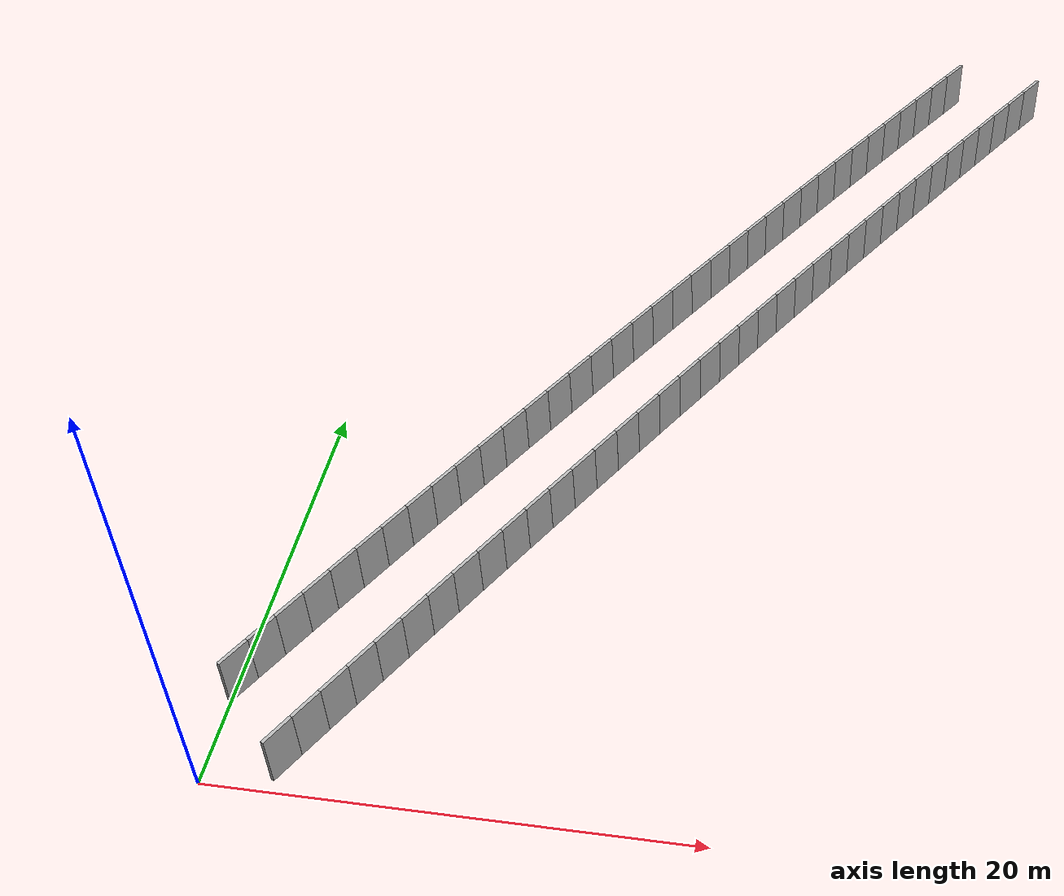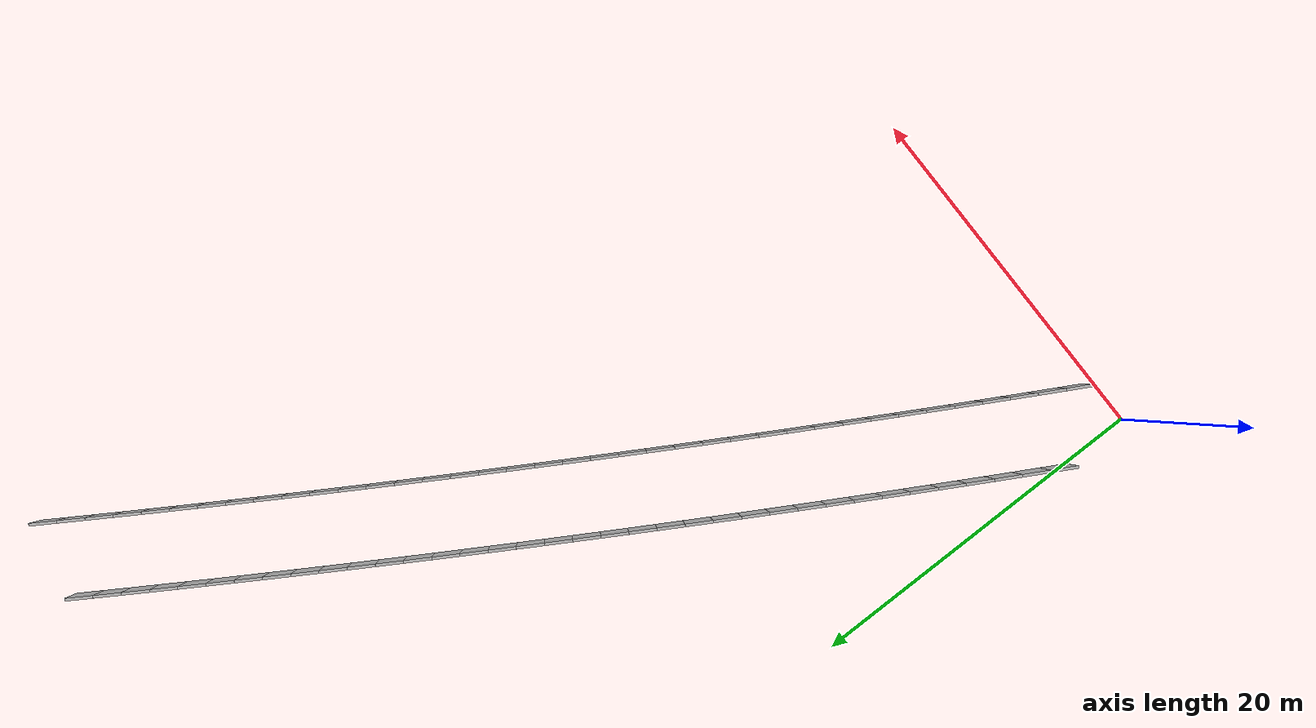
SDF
<?xml version="1.0" ?>
<sdf version="1.6">
  <model name="sps_0535">
    <pose frame="">0 0 0 0 -0 0</pose>
    <static>1</static>
    <self_collide>0</self_collide>
    <allow_auto_disable>0</allow_auto_disable>
    <link name="Wall4851">
      <kinematic>0</kinematic>
      <gravity>1</gravity>
      <self_collide>0</self_collide>
      <collision name="collision">
        <geometry>
          <box>
            <size>1.49664 0.15 2.5</size>
          </box>
        </geometry>
        <pose frame="">0 0 0 0 -0 0</pose>
      </collision>
      <visual name="visual">
        <geometry>
          <box>
            <size>1.49664 0.15 2.5</size>
          </box>
        </geometry>
        <pose frame="">0 0 0 0 -0 0</pose>
        <cast_shadows>1</cast_shadows>
        <transparency>0.0</transparency>
      </visual>
      <pose frame="">31.4339 48.8159 1.25 0 0 -2.13633</pose>
    </link>
    <link name="Wall4852">
      <kinematic>0</kinematic>
      <gravity>1</gravity>
      <self_collide>0</self_collide>
      <collision name="collision">
        <geometry>
          <box>
            <size>1.49649 0.15 2.5</size>
          </box>
        </geometry>
        <pose frame="">0 0 0 0 -0 0</pose>
      </collision>
      <visual name="visual">
        <geometry>
          <box>
            <size>1.49649 0.15 2.5</size>
          </box>
        </geometry>
        <pose frame="">0 0 0 0 -0 0</pose>
        <cast_shadows>1</cast_shadows>
        <transparency>0.0</transparency>
      </visual>
      <pose frame="">30.633 47.5517 1.25 0 0 -2.13466</pose>
    </link>
    <link name="Wall4853">
      <kinematic>0</kinematic>
      <gravity>1</gravity>
      <self_collide>0</self_collide>
      <collision name="collision">
        <geometry>
          <box>
            <size>1.49655 0.15 2.5</size>
          </box>
        </geometry>
        <pose frame="">0 0 0 0 -0 0</pose>
      </collision>
      <visual name="visual">
        <geometry>
          <box>
            <size>1.49655 0.15 2.5</size>
          </box>
        </geometry>
        <pose frame="">0 0 0 0 -0 0</pose>
        <cast_shadows>1</cast_shadows>
        <transparency>0.0</transparency>
      </visual>
      <pose frame="">29.8342 46.2862 1.25 0 0 -2.13304</pose>
    </link>
    <link name="Wall4854">
      <kinematic>0</kinematic>
      <gravity>1</gravity>
      <self_collide>0</self_collide>
      <collision name="collision">
        <geometry>
          <box>
            <size>1.49655 0.15 2.5</size>
          </box>
        </geometry>
        <pose frame="">0 0 0 0 -0 0</pose>
      </collision>
      <visual name="visual">
        <geometry>
          <box>
            <size>1.49655 0.15 2.5</size>
          </box>
        </geometry>
        <pose frame="">0 0 0 0 -0 0</pose>
        <cast_shadows>1</cast_shadows>
        <transparency>0.0</transparency>
      </visual>
      <pose frame="">29.0373 45.0194 1.25 0 0 -2.1315</pose>
    </link>
    <link name="Wall4855">
      <kinematic>0</kinematic>
      <gravity>1</gravity>
      <self_collide>0</self_collide>
      <collision name="collision">
        <geometry>
          <box>
            <size>1.49648 0.15 2.5</size>
          </box>
        </geometry>
        <pose frame="">0 0 0 0 -0 0</pose>
      </collision>
      <visual name="visual">
        <geometry>
          <box>
            <size>1.49648 0.15 2.5</size>
          </box>
        </geometry>
        <pose frame="">0 0 0 0 -0 0</pose>
        <cast_shadows>1</cast_shadows>
        <transparency>0.0</transparency>
      </visual>
      <pose frame="">28.2425 43.7514 1.25 0 0 -2.12989</pose>
    </link>
    <link name="Wall4856">
      <kinematic>0</kinematic>
      <gravity>1</gravity>
      <self_collide>0</self_collide>
      <collision name="collision">
        <geometry>
          <box>
            <size>1.49633 0.15 2.5</size>
          </box>
        </geometry>
        <pose frame="">0 0 0 0 -0 0</pose>
      </collision>
      <visual name="visual">
        <geometry>
          <box>
            <size>1.49633 0.15 2.5</size>
          </box>
        </geometry>
        <pose frame="">0 0 0 0 -0 0</pose>
        <cast_shadows>1</cast_shadows>
        <transparency>0.0</transparency>
      </visual>
      <pose frame="">27.4499 42.4822 1.25 0 0 -2.12827</pose>
    </link>
    <link name="Wall4857">
      <kinematic>0</kinematic>
      <gravity>1</gravity>
      <self_collide>0</self_collide>
      <collision name="collision">
        <geometry>
          <box>
            <size>1.49661 0.15 2.5</size>
          </box>
        </geometry>
        <pose frame="">0 0 0 0 -0 0</pose>
      </collision>
      <visual name="visual">
        <geometry>
          <box>
            <size>1.49661 0.15 2.5</size>
          </box>
        </geometry>
        <pose frame="">0 0 0 0 -0 0</pose>
        <cast_shadows>1</cast_shadows>
        <transparency>0.0</transparency>
      </visual>
      <pose frame="">26.6591 41.2117 1.25 0 0 -2.12672</pose>
    </link>
    <link name="Wall4858">
      <kinematic>0</kinematic>
      <gravity>1</gravity>
      <self_collide>0</self_collide>
      <collision name="collision">
        <geometry>
          <box>
            <size>1.49663 0.15 2.5</size>
          </box>
        </geometry>
        <pose frame="">0 0 0 0 -0 0</pose>
      </collision>
      <visual name="visual">
        <geometry>
          <box>
            <size>1.49663 0.15 2.5</size>
          </box>
        </geometry>
        <pose frame="">0 0 0 0 -0 0</pose>
        <cast_shadows>1</cast_shadows>
        <transparency>0.0</transparency>
      </visual>
      <pose frame="">25.8703 39.9399 1.25 0 0 -2.12527</pose>
    </link>
    <link name="Wall4859">
      <kinematic>0</kinematic>
      <gravity>1</gravity>
      <self_collide>0</self_collide>
      <collision name="collision">
        <geometry>
          <box>
            <size>1.49649 0.15 2.5</size>
          </box>
        </geometry>
        <pose frame="">0 0 0 0 -0 0</pose>
      </collision>
      <visual name="visual">
        <geometry>
          <box>
            <size>1.49649 0.15 2.5</size>
          </box>
        </geometry>
        <pose frame="">0 0 0 0 -0 0</pose>
        <cast_shadows>1</cast_shadows>
        <transparency>0.0</transparency>
      </visual>
      <pose frame="">25.0834 38.6669 1.25 0 0 -2.12365</pose>
    </link>
    <link name="Wall4860">
      <kinematic>0</kinematic>
      <gravity>1</gravity>
      <self_collide>0</self_collide>
      <collision name="collision">
        <geometry>
          <box>
            <size>1.49668 0.15 2.5</size>
          </box>
        </geometry>
        <pose frame="">0 0 0 0 -0 0</pose>
      </collision>
      <visual name="visual">
        <geometry>
          <box>
            <size>1.49668 0.15 2.5</size>
          </box>
        </geometry>
        <pose frame="">0 0 0 0 -0 0</pose>
        <cast_shadows>1</cast_shadows>
        <transparency>0.0</transparency>
      </visual>
      <pose frame="">24.2985 37.3926 1.25 0 0 -2.12199</pose>
    </link>
    <link name="Wall4861">
      <kinematic>0</kinematic>
      <gravity>1</gravity>
      <self_collide>0</self_collide>
      <collision name="collision">
        <geometry>
          <box>
            <size>1.49649 0.15 2.5</size>
          </box>
        </geometry>
        <pose frame="">0 0 0 0 -0 0</pose>
      </collision>
      <visual name="visual">
        <geometry>
          <box>
            <size>1.49649 0.15 2.5</size>
          </box>
        </geometry>
        <pose frame="">0 0 0 0 -0 0</pose>
        <cast_shadows>1</cast_shadows>
        <transparency>0.0</transparency>
      </visual>
      <pose frame="">23.5159 36.117 1.25 0 0 -2.1203</pose>
    </link>
    <link name="Wall4862">
      <kinematic>0</kinematic>
      <gravity>1</gravity>
      <self_collide>0</self_collide>
      <collision name="collision">
        <geometry>
          <box>
            <size>1.49635 0.15 2.5</size>
          </box>
        </geometry>
        <pose frame="">0 0 0 0 -0 0</pose>
      </collision>
      <visual name="visual">
        <geometry>
          <box>
            <size>1.49635 0.15 2.5</size>
          </box>
        </geometry>
        <pose frame="">0 0 0 0 -0 0</pose>
        <cast_shadows>1</cast_shadows>
        <transparency>0.0</transparency>
      </visual>
      <pose frame="">22.7353 34.8403 1.25 0 0 -2.11882</pose>
    </link>
    <link name="Wall4863">
      <kinematic>0</kinematic>
      <gravity>1</gravity>
      <self_collide>0</self_collide>
      <collision name="collision">
        <geometry>
          <box>
            <size>1.49669 0.15 2.5</size>
          </box>
        </geometry>
        <pose frame="">0 0 0 0 -0 0</pose>
      </collision>
      <visual name="visual">
        <geometry>
          <box>
            <size>1.49669 0.15 2.5</size>
          </box>
        </geometry>
        <pose frame="">0 0 0 0 -0 0</pose>
        <cast_shadows>1</cast_shadows>
        <transparency>0.0</transparency>
      </visual>
      <pose frame="">21.9567 33.5623 1.25 0 0 -2.11715</pose>
    </link>
    <link name="Wall4864">
      <kinematic>0</kinematic>
      <gravity>1</gravity>
      <self_collide>0</self_collide>
      <collision name="collision">
        <geometry>
          <box>
            <size>1.49645 0.15 2.5</size>
          </box>
        </geometry>
        <pose frame="">0 0 0 0 -0 0</pose>
      </collision>
      <visual name="visual">
        <geometry>
          <box>
            <size>1.49645 0.15 2.5</size>
          </box>
        </geometry>
        <pose frame="">0 0 0 0 -0 0</pose>
        <cast_shadows>1</cast_shadows>
        <transparency>0.0</transparency>
      </visual>
      <pose frame="">21.18 32.283 1.25 0 0 -2.11563</pose>
    </link>
    <link name="Wall4865">
      <kinematic>0</kinematic>
      <gravity>1</gravity>
      <self_collide>0</self_collide>
      <collision name="collision">
        <geometry>
          <box>
            <size>1.49648 0.15 2.5</size>
          </box>
        </geometry>
        <pose frame="">0 0 0 0 -0 0</pose>
      </collision>
      <visual name="visual">
        <geometry>
          <box>
            <size>1.49648 0.15 2.5</size>
          </box>
        </geometry>
        <pose frame="">0 0 0 0 -0 0</pose>
        <cast_shadows>1</cast_shadows>
        <transparency>0.0</transparency>
      </visual>
      <pose frame="">20.4054 31.0026 1.25 0 0 -2.11409</pose>
    </link>
    <link name="Wall4866">
      <kinematic>0</kinematic>
      <gravity>1</gravity>
      <self_collide>0</self_collide>
      <collision name="collision">
        <geometry>
          <box>
            <size>1.49665 0.15 2.5</size>
          </box>
        </geometry>
        <pose frame="">0 0 0 0 -0 0</pose>
      </collision>
      <visual name="visual">
        <geometry>
          <box>
            <size>1.49665 0.15 2.5</size>
          </box>
        </geometry>
        <pose frame="">0 0 0 0 -0 0</pose>
        <cast_shadows>1</cast_shadows>
        <transparency>0.0</transparency>
      </visual>
      <pose frame="">19.6328 29.7209 1.25 0 0 -2.11245</pose>
    </link>
    <link name="Wall4867">
      <kinematic>0</kinematic>
      <gravity>1</gravity>
      <self_collide>0</self_collide>
      <collision name="collision">
        <geometry>
          <box>
            <size>1.49645 0.15 2.5</size>
          </box>
        </geometry>
        <pose frame="">0 0 0 0 -0 0</pose>
      </collision>
      <visual name="visual">
        <geometry>
          <box>
            <size>1.49645 0.15 2.5</size>
          </box>
        </geometry>
        <pose frame="">0 0 0 0 -0 0</pose>
        <cast_shadows>1</cast_shadows>
        <transparency>0.0</transparency>
      </visual>
      <pose frame="">18.8622 28.438 1.25 0 0 -2.11096</pose>
    </link>
    <link name="Wall4868">
      <kinematic>0</kinematic>
      <gravity>1</gravity>
      <self_collide>0</self_collide>
      <collision name="collision">
        <geometry>
          <box>
            <size>1.49652 0.15 2.5</size>
          </box>
        </geometry>
        <pose frame="">0 0 0 0 -0 0</pose>
      </collision>
      <visual name="visual">
        <geometry>
          <box>
            <size>1.49652 0.15 2.5</size>
          </box>
        </geometry>
        <pose frame="">0 0 0 0 -0 0</pose>
        <cast_shadows>1</cast_shadows>
        <transparency>0.0</transparency>
      </visual>
      <pose frame="">18.0937 27.1539 1.25 0 0 -2.10922</pose>
    </link>
    <link name="Wall4869">
      <kinematic>0</kinematic>
      <gravity>1</gravity>
      <self_collide>0</self_collide>
      <collision name="collision">
        <geometry>
          <box>
            <size>1.49633 0.15 2.5</size>
          </box>
        </geometry>
        <pose frame="">0 0 0 0 -0 0</pose>
      </collision>
      <visual name="visual">
        <geometry>
          <box>
            <size>1.49633 0.15 2.5</size>
          </box>
        </geometry>
        <pose frame="">0 0 0 0 -0 0</pose>
        <cast_shadows>1</cast_shadows>
        <transparency>0.0</transparency>
      </visual>
      <pose frame="">17.3274 25.8686 1.25 0 0 -2.10773</pose>
    </link>
    <link name="Wall4870">
      <kinematic>0</kinematic>
      <gravity>1</gravity>
      <self_collide>0</self_collide>
      <collision name="collision">
        <geometry>
          <box>
            <size>1.49669 0.15 2.5</size>
          </box>
        </geometry>
        <pose frame="">0 0 0 0 -0 0</pose>
      </collision>
      <visual name="visual">
        <geometry>
          <box>
            <size>1.49669 0.15 2.5</size>
          </box>
        </geometry>
        <pose frame="">0 0 0 0 -0 0</pose>
        <cast_shadows>1</cast_shadows>
        <transparency>0.0</transparency>
      </visual>
      <pose frame="">16.5629 24.5821 1.25 0 0 -2.10622</pose>
    </link>
    <link name="Wall4871">
      <kinematic>0</kinematic>
      <gravity>1</gravity>
      <self_collide>0</self_collide>
      <collision name="collision">
        <geometry>
          <box>
            <size>1.49656 0.15 2.5</size>
          </box>
        </geometry>
        <pose frame="">0 0 0 0 -0 0</pose>
      </collision>
      <visual name="visual">
        <geometry>
          <box>
            <size>1.49656 0.15 2.5</size>
          </box>
        </geometry>
        <pose frame="">0 0 0 0 -0 0</pose>
        <cast_shadows>1</cast_shadows>
        <transparency>0.0</transparency>
      </visual>
      <pose frame="">15.8003 23.2943 1.25 0 0 -2.10456</pose>
    </link>
    <link name="Wall4872">
      <kinematic>0</kinematic>
      <gravity>1</gravity>
      <self_collide>0</self_collide>
      <collision name="collision">
        <geometry>
          <box>
            <size>1.49643 0.15 2.5</size>
          </box>
        </geometry>
        <pose frame="">0 0 0 0 -0 0</pose>
      </collision>
      <visual name="visual">
        <geometry>
          <box>
            <size>1.49643 0.15 2.5</size>
          </box>
        </geometry>
        <pose frame="">0 0 0 0 -0 0</pose>
        <cast_shadows>1</cast_shadows>
        <transparency>0.0</transparency>
      </visual>
      <pose frame="">15.0399 22.0054 1.25 0 0 -2.10305</pose>
    </link>
    <link name="Wall4873">
      <kinematic>0</kinematic>
      <gravity>1</gravity>
      <self_collide>0</self_collide>
      <collision name="collision">
        <geometry>
          <box>
            <size>1.49648 0.15 2.5</size>
          </box>
        </geometry>
        <pose frame="">0 0 0 0 -0 0</pose>
      </collision>
      <visual name="visual">
        <geometry>
          <box>
            <size>1.49648 0.15 2.5</size>
          </box>
        </geometry>
        <pose frame="">0 0 0 0 -0 0</pose>
        <cast_shadows>1</cast_shadows>
        <transparency>0.0</transparency>
      </visual>
      <pose frame="">14.2816 20.7153 1.25 0 0 -2.10133</pose>
    </link>
    <link name="Wall4874">
      <kinematic>0</kinematic>
      <gravity>1</gravity>
      <self_collide>0</self_collide>
      <collision name="collision">
        <geometry>
          <box>
            <size>1.49661 0.15 2.5</size>
          </box>
        </geometry>
        <pose frame="">0 0 0 0 -0 0</pose>
      </collision>
      <visual name="visual">
        <geometry>
          <box>
            <size>1.49661 0.15 2.5</size>
          </box>
        </geometry>
        <pose frame="">0 0 0 0 -0 0</pose>
        <cast_shadows>1</cast_shadows>
        <transparency>0.0</transparency>
      </visual>
      <pose frame="">13.5254 19.4239 1.25 0 0 -2.09986</pose>
    </link>
    <link name="Wall4875">
      <kinematic>0</kinematic>
      <gravity>1</gravity>
      <self_collide>0</self_collide>
      <collision name="collision">
        <geometry>
          <box>
            <size>1.49658 0.15 2.5</size>
          </box>
        </geometry>
        <pose frame="">0 0 0 0 -0 0</pose>
      </collision>
      <visual name="visual">
        <geometry>
          <box>
            <size>1.49658 0.15 2.5</size>
          </box>
        </geometry>
        <pose frame="">0 0 0 0 -0 0</pose>
        <cast_shadows>1</cast_shadows>
        <transparency>0.0</transparency>
      </visual>
      <pose frame="">12.771 18.1313 1.25 0 0 -2.09821</pose>
    </link>
    <link name="Wall4876">
      <kinematic>0</kinematic>
      <gravity>1</gravity>
      <self_collide>0</self_collide>
      <collision name="collision">
        <geometry>
          <box>
            <size>1.49654 0.15 2.5</size>
          </box>
        </geometry>
        <pose frame="">0 0 0 0 -0 0</pose>
      </collision>
      <visual name="visual">
        <geometry>
          <box>
            <size>1.49654 0.15 2.5</size>
          </box>
        </geometry>
        <pose frame="">0 0 0 0 -0 0</pose>
        <cast_shadows>1</cast_shadows>
        <transparency>0.0</transparency>
      </visual>
      <pose frame="">12.0189 16.8375 1.25 0 0 -2.09662</pose>
    </link>
    <link name="Wall4877">
      <kinematic>0</kinematic>
      <gravity>1</gravity>
      <self_collide>0</self_collide>
      <collision name="collision">
        <geometry>
          <box>
            <size>1.49637 0.15 2.5</size>
          </box>
        </geometry>
        <pose frame="">0 0 0 0 -0 0</pose>
      </collision>
      <visual name="visual">
        <geometry>
          <box>
            <size>1.49637 0.15 2.5</size>
          </box>
        </geometry>
        <pose frame="">0 0 0 0 -0 0</pose>
        <cast_shadows>1</cast_shadows>
        <transparency>0.0</transparency>
      </visual>
      <pose frame="">11.2688 15.5426 1.25 0 0 -2.09504</pose>
    </link>
    <link name="Wall4878">
      <kinematic>0</kinematic>
      <gravity>1</gravity>
      <self_collide>0</self_collide>
      <collision name="collision">
        <geometry>
          <box>
            <size>1.49667 0.15 2.5</size>
          </box>
        </geometry>
        <pose frame="">0 0 0 0 -0 0</pose>
      </collision>
      <visual name="visual">
        <geometry>
          <box>
            <size>1.49667 0.15 2.5</size>
          </box>
        </geometry>
        <pose frame="">0 0 0 0 -0 0</pose>
        <cast_shadows>1</cast_shadows>
        <transparency>0.0</transparency>
      </visual>
      <pose frame="">10.5207 14.2465 1.25 0 0 -2.09351</pose>
    </link>
    <link name="Wall4879">
      <kinematic>0</kinematic>
      <gravity>1</gravity>
      <self_collide>0</self_collide>
      <collision name="collision">
        <geometry>
          <box>
            <size>1.49633 0.15 2.5</size>
          </box>
        </geometry>
        <pose frame="">0 0 0 0 -0 0</pose>
      </collision>
      <visual name="visual">
        <geometry>
          <box>
            <size>1.49633 0.15 2.5</size>
          </box>
        </geometry>
        <pose frame="">0 0 0 0 -0 0</pose>
        <cast_shadows>1</cast_shadows>
        <transparency>0.0</transparency>
      </visual>
      <pose frame="">9.77465 12.9492 1.25 0 0 -2.09181</pose>
    </link>
    <link name="Wall4880">
      <kinematic>0</kinematic>
      <gravity>1</gravity>
      <self_collide>0</self_collide>
      <collision name="collision">
        <geometry>
          <box>
            <size>1.49664 0.15 2.5</size>
          </box>
        </geometry>
        <pose frame="">0 0 0 0 -0 0</pose>
      </collision>
      <visual name="visual">
        <geometry>
          <box>
            <size>1.49664 0.15 2.5</size>
          </box>
        </geometry>
        <pose frame="">0 0 0 0 -0 0</pose>
        <cast_shadows>1</cast_shadows>
        <transparency>0.0</transparency>
      </visual>
      <pose frame="">9.03075 11.6507 1.25 0 0 -2.09028</pose>
    </link>
    <link name="Wall4881">
      <kinematic>0</kinematic>
      <gravity>1</gravity>
      <self_collide>0</self_collide>
      <collision name="collision">
        <geometry>
          <box>
            <size>1.49645 0.15 2.5</size>
          </box>
        </geometry>
        <pose frame="">0 0 0 0 -0 0</pose>
      </collision>
      <visual name="visual">
        <geometry>
          <box>
            <size>1.49645 0.15 2.5</size>
          </box>
        </geometry>
        <pose frame="">0 0 0 0 -0 0</pose>
        <cast_shadows>1</cast_shadows>
        <transparency>0.0</transparency>
      </visual>
      <pose frame="">8.28887 10.351 1.25 0 0 -2.08866</pose>
    </link>
    <link name="Wall4882">
      <kinematic>0</kinematic>
      <gravity>1</gravity>
      <self_collide>0</self_collide>
      <collision name="collision">
        <geometry>
          <box>
            <size>1.49649 0.15 2.5</size>
          </box>
        </geometry>
        <pose frame="">0 0 0 0 -0 0</pose>
      </collision>
      <visual name="visual">
        <geometry>
          <box>
            <size>1.49649 0.15 2.5</size>
          </box>
        </geometry>
        <pose frame="">0 0 0 0 -0 0</pose>
        <cast_shadows>1</cast_shadows>
        <transparency>0.0</transparency>
      </visual>
      <pose frame="">7.54906 9.05019 1.25 0 0 -2.08714</pose>
    </link>
    <link name="Wall4883">
      <kinematic>0</kinematic>
      <gravity>1</gravity>
      <self_collide>0</self_collide>
      <collision name="collision">
        <geometry>
          <box>
            <size>1.49656 0.15 2.5</size>
          </box>
        </geometry>
        <pose frame="">0 0 0 0 -0 0</pose>
      </collision>
      <visual name="visual">
        <geometry>
          <box>
            <size>1.49656 0.15 2.5</size>
          </box>
        </geometry>
        <pose frame="">0 0 0 0 -0 0</pose>
        <cast_shadows>1</cast_shadows>
        <transparency>0.0</transparency>
      </visual>
      <pose frame="">6.81124 7.74818 1.25 0 0 -2.08557</pose>
    </link>
    <link name="Wall4884">
      <kinematic>0</kinematic>
      <gravity>1</gravity>
      <self_collide>0</self_collide>
      <collision name="collision">
        <geometry>
          <box>
            <size>1.49658 0.15 2.5</size>
          </box>
        </geometry>
        <pose frame="">0 0 0 0 -0 0</pose>
      </collision>
      <visual name="visual">
        <geometry>
          <box>
            <size>1.49658 0.15 2.5</size>
          </box>
        </geometry>
        <pose frame="">0 0 0 0 -0 0</pose>
        <cast_shadows>1</cast_shadows>
        <transparency>0.0</transparency>
      </visual>
      <pose frame="">6.07543 6.44499 1.25 0 0 -2.08402</pose>
    </link>
    <link name="Wall4885">
      <kinematic>0</kinematic>
      <gravity>1</gravity>
      <self_collide>0</self_collide>
      <collision name="collision">
        <geometry>
          <box>
            <size>1.49654 0.15 2.5</size>
          </box>
        </geometry>
        <pose frame="">0 0 0 0 -0 0</pose>
      </collision>
      <visual name="visual">
        <geometry>
          <box>
            <size>1.49654 0.15 2.5</size>
          </box>
        </geometry>
        <pose frame="">0 0 0 0 -0 0</pose>
        <cast_shadows>1</cast_shadows>
        <transparency>0.0</transparency>
      </visual>
      <pose frame="">5.34176 5.14061 1.25 0 0 -2.0823</pose>
    </link>
    <link name="Wall4886">
      <kinematic>0</kinematic>
      <gravity>1</gravity>
      <self_collide>0</self_collide>
      <collision name="collision">
        <geometry>
          <box>
            <size>1.49652 0.15 2.5</size>
          </box>
        </geometry>
        <pose frame="">0 0 0 0 -0 0</pose>
      </collision>
      <visual name="visual">
        <geometry>
          <box>
            <size>1.49652 0.15 2.5</size>
          </box>
        </geometry>
        <pose frame="">0 0 0 0 -0 0</pose>
        <cast_shadows>1</cast_shadows>
        <transparency>0.0</transparency>
      </visual>
      <pose frame="">4.61016 3.8351 1.25 0 0 -2.08086</pose>
    </link>
    <link name="Wall4887">
      <kinematic>0</kinematic>
      <gravity>1</gravity>
      <self_collide>0</self_collide>
      <collision name="collision">
        <geometry>
          <box>
            <size>1.49652 0.15 2.5</size>
          </box>
        </geometry>
        <pose frame="">0 0 0 0 -0 0</pose>
      </collision>
      <visual name="visual">
        <geometry>
          <box>
            <size>1.49652 0.15 2.5</size>
          </box>
        </geometry>
        <pose frame="">0 0 0 0 -0 0</pose>
        <cast_shadows>1</cast_shadows>
        <transparency>0.0</transparency>
      </visual>
      <pose frame="">3.88055 2.52849 1.25 0 0 -2.07927</pose>
    </link>
    <link name="Wall4888">
      <kinematic>0</kinematic>
      <gravity>1</gravity>
      <self_collide>0</self_collide>
      <collision name="collision">
        <geometry>
          <box>
            <size>1.49652 0.15 2.5</size>
          </box>
        </geometry>
        <pose frame="">0 0 0 0 -0 0</pose>
      </collision>
      <visual name="visual">
        <geometry>
          <box>
            <size>1.49652 0.15 2.5</size>
          </box>
        </geometry>
        <pose frame="">0 0 0 0 -0 0</pose>
        <cast_shadows>1</cast_shadows>
        <transparency>0.0</transparency>
      </visual>
      <pose frame="">3.15307 1.22069 1.25 0 0 -2.07759</pose>
    </link>
    <link name="Wall6648">
      <kinematic>0</kinematic>
      <gravity>1</gravity>
      <self_collide>0</self_collide>
      <collision name="collision">
        <geometry>
          <box>
            <size>1.50311 0.15 2.5</size>
          </box>
        </geometry>
        <pose frame="">0 0 0 0 -0 0</pose>
      </collision>
      <visual name="visual">
        <geometry>
          <box>
            <size>1.50311 0.15 2.5</size>
          </box>
        </geometry>
        <pose frame="">0 0 0 0 -0 0</pose>
        <cast_shadows>1</cast_shadows>
        <transparency>0.0</transparency>
      </visual>
      <pose frame="">27.1349 49.7645 1.25 0 0 -2.13471</pose>
    </link>
    <link name="Wall6649">
      <kinematic>0</kinematic>
      <gravity>1</gravity>
      <self_collide>0</self_collide>
      <collision name="collision">
        <geometry>
          <box>
            <size>1.50307 0.15 2.5</size>
          </box>
        </geometry>
        <pose frame="">0 0 0 0 -0 0</pose>
      </collision>
      <visual name="visual">
        <geometry>
          <box>
            <size>1.50307 0.15 2.5</size>
          </box>
        </geometry>
        <pose frame="">0 0 0 0 -0 0</pose>
        <cast_shadows>1</cast_shadows>
        <transparency>0.0</transparency>
      </visual>
      <pose frame="">26.3325 48.4935 1.25 0 0 -2.13314</pose>
    </link>
    <link name="Wall6650">
      <kinematic>0</kinematic>
      <gravity>1</gravity>
      <self_collide>0</self_collide>
      <collision name="collision">
        <geometry>
          <box>
            <size>1.50318 0.15 2.5</size>
          </box>
        </geometry>
        <pose frame="">0 0 0 0 -0 0</pose>
      </collision>
      <visual name="visual">
        <geometry>
          <box>
            <size>1.50318 0.15 2.5</size>
          </box>
        </geometry>
        <pose frame="">0 0 0 0 -0 0</pose>
        <cast_shadows>1</cast_shadows>
        <transparency>0.0</transparency>
      </visual>
      <pose frame="">25.5322 47.2212 1.25 0 0 -2.13151</pose>
    </link>
    <link name="Wall6651">
      <kinematic>0</kinematic>
      <gravity>1</gravity>
      <self_collide>0</self_collide>
      <collision name="collision">
        <geometry>
          <box>
            <size>1.50303 0.15 2.5</size>
          </box>
        </geometry>
        <pose frame="">0 0 0 0 -0 0</pose>
      </collision>
      <visual name="visual">
        <geometry>
          <box>
            <size>1.50303 0.15 2.5</size>
          </box>
        </geometry>
        <pose frame="">0 0 0 0 -0 0</pose>
        <cast_shadows>1</cast_shadows>
        <transparency>0.0</transparency>
      </visual>
      <pose frame="">24.7338 45.9476 1.25 0 0 -2.12989</pose>
    </link>
    <link name="Wall6652">
      <kinematic>0</kinematic>
      <gravity>1</gravity>
      <self_collide>0</self_collide>
      <collision name="collision">
        <geometry>
          <box>
            <size>1.50317 0.15 2.5</size>
          </box>
        </geometry>
        <pose frame="">0 0 0 0 -0 0</pose>
      </collision>
      <visual name="visual">
        <geometry>
          <box>
            <size>1.50317 0.15 2.5</size>
          </box>
        </geometry>
        <pose frame="">0 0 0 0 -0 0</pose>
        <cast_shadows>1</cast_shadows>
        <transparency>0.0</transparency>
      </visual>
      <pose frame="">23.9376 44.6727 1.25 0 0 -2.12821</pose>
    </link>
    <link name="Wall6653">
      <kinematic>0</kinematic>
      <gravity>1</gravity>
      <self_collide>0</self_collide>
      <collision name="collision">
        <geometry>
          <box>
            <size>1.50313 0.15 2.5</size>
          </box>
        </geometry>
        <pose frame="">0 0 0 0 -0 0</pose>
      </collision>
      <visual name="visual">
        <geometry>
          <box>
            <size>1.50313 0.15 2.5</size>
          </box>
        </geometry>
        <pose frame="">0 0 0 0 -0 0</pose>
        <cast_shadows>1</cast_shadows>
        <transparency>0.0</transparency>
      </visual>
      <pose frame="">23.1435 43.3965 1.25 0 0 -2.1267</pose>
    </link>
    <link name="Wall6654">
      <kinematic>0</kinematic>
      <gravity>1</gravity>
      <self_collide>0</self_collide>
      <collision name="collision">
        <geometry>
          <box>
            <size>1.50299 0.15 2.5</size>
          </box>
        </geometry>
        <pose frame="">0 0 0 0 -0 0</pose>
      </collision>
      <visual name="visual">
        <geometry>
          <box>
            <size>1.50299 0.15 2.5</size>
          </box>
        </geometry>
        <pose frame="">0 0 0 0 -0 0</pose>
        <cast_shadows>1</cast_shadows>
        <transparency>0.0</transparency>
      </visual>
      <pose frame="">22.3512 42.1192 1.25 0 0 -2.12532</pose>
    </link>
    <link name="Wall6655">
      <kinematic>0</kinematic>
      <gravity>1</gravity>
      <self_collide>0</self_collide>
      <collision name="collision">
        <geometry>
          <box>
            <size>1.50324 0.15 2.5</size>
          </box>
        </geometry>
        <pose frame="">0 0 0 0 -0 0</pose>
      </collision>
      <visual name="visual">
        <geometry>
          <box>
            <size>1.50324 0.15 2.5</size>
          </box>
        </geometry>
        <pose frame="">0 0 0 0 -0 0</pose>
        <cast_shadows>1</cast_shadows>
        <transparency>0.0</transparency>
      </visual>
      <pose frame="">21.5609 40.8406 1.25 0 0 -2.1235</pose>
    </link>
    <link name="Wall6656">
      <kinematic>0</kinematic>
      <gravity>1</gravity>
      <self_collide>0</self_collide>
      <collision name="collision">
        <geometry>
          <box>
            <size>1.50305 0.15 2.5</size>
          </box>
        </geometry>
        <pose frame="">0 0 0 0 -0 0</pose>
      </collision>
      <visual name="visual">
        <geometry>
          <box>
            <size>1.50305 0.15 2.5</size>
          </box>
        </geometry>
        <pose frame="">0 0 0 0 -0 0</pose>
        <cast_shadows>1</cast_shadows>
        <transparency>0.0</transparency>
      </visual>
      <pose frame="">20.7727 39.5607 1.25 0 0 -2.12205</pose>
    </link>
    <link name="Wall6657">
      <kinematic>0</kinematic>
      <gravity>1</gravity>
      <self_collide>0</self_collide>
      <collision name="collision">
        <geometry>
          <box>
            <size>1.50306 0.15 2.5</size>
          </box>
        </geometry>
        <pose frame="">0 0 0 0 -0 0</pose>
      </collision>
      <visual name="visual">
        <geometry>
          <box>
            <size>1.50306 0.15 2.5</size>
          </box>
        </geometry>
        <pose frame="">0 0 0 0 -0 0</pose>
        <cast_shadows>1</cast_shadows>
        <transparency>0.0</transparency>
      </visual>
      <pose frame="">19.9866 38.2796 1.25 0 0 -2.12028</pose>
    </link>
    <link name="Wall6658">
      <kinematic>0</kinematic>
      <gravity>1</gravity>
      <self_collide>0</self_collide>
      <collision name="collision">
        <geometry>
          <box>
            <size>1.50318 0.15 2.5</size>
          </box>
        </geometry>
        <pose frame="">0 0 0 0 -0 0</pose>
      </collision>
      <visual name="visual">
        <geometry>
          <box>
            <size>1.50318 0.15 2.5</size>
          </box>
        </geometry>
        <pose frame="">0 0 0 0 -0 0</pose>
        <cast_shadows>1</cast_shadows>
        <transparency>0.0</transparency>
      </visual>
      <pose frame="">19.2025 36.9972 1.25 0 0 -2.11885</pose>
    </link>
    <link name="Wall6659">
      <kinematic>0</kinematic>
      <gravity>1</gravity>
      <self_collide>0</self_collide>
      <collision name="collision">
        <geometry>
          <box>
            <size>1.50287 0.15 2.5</size>
          </box>
        </geometry>
        <pose frame="">0 0 0 0 -0 0</pose>
      </collision>
      <visual name="visual">
        <geometry>
          <box>
            <size>1.50287 0.15 2.5</size>
          </box>
        </geometry>
        <pose frame="">0 0 0 0 -0 0</pose>
        <cast_shadows>1</cast_shadows>
        <transparency>0.0</transparency>
      </visual>
      <pose frame="">18.4204 35.7137 1.25 0 0 -2.11727</pose>
    </link>
    <link name="Wall6660">
      <kinematic>0</kinematic>
      <gravity>1</gravity>
      <self_collide>0</self_collide>
      <collision name="collision">
        <geometry>
          <box>
            <size>1.50302 0.15 2.5</size>
          </box>
        </geometry>
        <pose frame="">0 0 0 0 -0 0</pose>
      </collision>
      <visual name="visual">
        <geometry>
          <box>
            <size>1.50302 0.15 2.5</size>
          </box>
        </geometry>
        <pose frame="">0 0 0 0 -0 0</pose>
        <cast_shadows>1</cast_shadows>
        <transparency>0.0</transparency>
      </visual>
      <pose frame="">17.6404 34.429 1.25 0 0 -2.11564</pose>
    </link>
    <link name="Wall6661">
      <kinematic>0</kinematic>
      <gravity>1</gravity>
      <self_collide>0</self_collide>
      <collision name="collision">
        <geometry>
          <box>
            <size>1.50321 0.15 2.5</size>
          </box>
        </geometry>
        <pose frame="">0 0 0 0 -0 0</pose>
      </collision>
      <visual name="visual">
        <geometry>
          <box>
            <size>1.50321 0.15 2.5</size>
          </box>
        </geometry>
        <pose frame="">0 0 0 0 -0 0</pose>
        <cast_shadows>1</cast_shadows>
        <transparency>0.0</transparency>
      </visual>
      <pose frame="">16.8624 33.1429 1.25 0 0 -2.11404</pose>
    </link>
    <link name="Wall6662">
      <kinematic>0</kinematic>
      <gravity>1</gravity>
      <self_collide>0</self_collide>
      <collision name="collision">
        <geometry>
          <box>
            <size>1.50298 0.15 2.5</size>
          </box>
        </geometry>
        <pose frame="">0 0 0 0 -0 0</pose>
      </collision>
      <visual name="visual">
        <geometry>
          <box>
            <size>1.50298 0.15 2.5</size>
          </box>
        </geometry>
        <pose frame="">0 0 0 0 -0 0</pose>
        <cast_shadows>1</cast_shadows>
        <transparency>0.0</transparency>
      </visual>
      <pose frame="">16.0864 31.8556 1.25 0 0 -2.11253</pose>
    </link>
    <link name="Wall6663">
      <kinematic>0</kinematic>
      <gravity>1</gravity>
      <self_collide>0</self_collide>
      <collision name="collision">
        <geometry>
          <box>
            <size>1.50318 0.15 2.5</size>
          </box>
        </geometry>
        <pose frame="">0 0 0 0 -0 0</pose>
      </collision>
      <visual name="visual">
        <geometry>
          <box>
            <size>1.50318 0.15 2.5</size>
          </box>
        </geometry>
        <pose frame="">0 0 0 0 -0 0</pose>
        <cast_shadows>1</cast_shadows>
        <transparency>0.0</transparency>
      </visual>
      <pose frame="">15.3124 30.5671 1.25 0 0 -2.11093</pose>
    </link>
    <link name="Wall6664">
      <kinematic>0</kinematic>
      <gravity>1</gravity>
      <self_collide>0</self_collide>
      <collision name="collision">
        <geometry>
          <box>
            <size>1.5031 0.15 2.5</size>
          </box>
        </geometry>
        <pose frame="">0 0 0 0 -0 0</pose>
      </collision>
      <visual name="visual">
        <geometry>
          <box>
            <size>1.5031 0.15 2.5</size>
          </box>
        </geometry>
        <pose frame="">0 0 0 0 -0 0</pose>
        <cast_shadows>1</cast_shadows>
        <transparency>0.0</transparency>
      </visual>
      <pose frame="">14.5405 29.2773 1.25 0 0 -2.10926</pose>
    </link>
    <link name="Wall6665">
      <kinematic>0</kinematic>
      <gravity>1</gravity>
      <self_collide>0</self_collide>
      <collision name="collision">
        <geometry>
          <box>
            <size>1.50311 0.15 2.5</size>
          </box>
        </geometry>
        <pose frame="">0 0 0 0 -0 0</pose>
      </collision>
      <visual name="visual">
        <geometry>
          <box>
            <size>1.50311 0.15 2.5</size>
          </box>
        </geometry>
        <pose frame="">0 0 0 0 -0 0</pose>
        <cast_shadows>1</cast_shadows>
        <transparency>0.0</transparency>
      </visual>
      <pose frame="">13.7707 27.9863 1.25 0 0 -2.10769</pose>
    </link>
    <link name="Wall6666">
      <kinematic>0</kinematic>
      <gravity>1</gravity>
      <self_collide>0</self_collide>
      <collision name="collision">
        <geometry>
          <box>
            <size>1.50292 0.15 2.5</size>
          </box>
        </geometry>
        <pose frame="">0 0 0 0 -0 0</pose>
      </collision>
      <visual name="visual">
        <geometry>
          <box>
            <size>1.50292 0.15 2.5</size>
          </box>
        </geometry>
        <pose frame="">0 0 0 0 -0 0</pose>
        <cast_shadows>1</cast_shadows>
        <transparency>0.0</transparency>
      </visual>
      <pose frame="">13.0029 26.6942 1.25 0 0 -2.10621</pose>
    </link>
    <link name="Wall6667">
      <kinematic>0</kinematic>
      <gravity>1</gravity>
      <self_collide>0</self_collide>
      <collision name="collision">
        <geometry>
          <box>
            <size>1.50329 0.15 2.5</size>
          </box>
        </geometry>
        <pose frame="">0 0 0 0 -0 0</pose>
      </collision>
      <visual name="visual">
        <geometry>
          <box>
            <size>1.50329 0.15 2.5</size>
          </box>
        </geometry>
        <pose frame="">0 0 0 0 -0 0</pose>
        <cast_shadows>1</cast_shadows>
        <transparency>0.0</transparency>
      </visual>
      <pose frame="">12.2371 25.4008 1.25 0 0 -2.10455</pose>
    </link>
    <link name="Wall6668">
      <kinematic>0</kinematic>
      <gravity>1</gravity>
      <self_collide>0</self_collide>
      <collision name="collision">
        <geometry>
          <box>
            <size>1.50283 0.15 2.5</size>
          </box>
        </geometry>
        <pose frame="">0 0 0 0 -0 0</pose>
      </collision>
      <visual name="visual">
        <geometry>
          <box>
            <size>1.50283 0.15 2.5</size>
          </box>
        </geometry>
        <pose frame="">0 0 0 0 -0 0</pose>
        <cast_shadows>1</cast_shadows>
        <transparency>0.0</transparency>
      </visual>
      <pose frame="">11.4733 24.1062 1.25 0 0 -2.10299</pose>
    </link>
    <link name="Wall6669">
      <kinematic>0</kinematic>
      <gravity>1</gravity>
      <self_collide>0</self_collide>
      <collision name="collision">
        <geometry>
          <box>
            <size>1.50305 0.15 2.5</size>
          </box>
        </geometry>
        <pose frame="">0 0 0 0 -0 0</pose>
      </collision>
      <visual name="visual">
        <geometry>
          <box>
            <size>1.50305 0.15 2.5</size>
          </box>
        </geometry>
        <pose frame="">0 0 0 0 -0 0</pose>
        <cast_shadows>1</cast_shadows>
        <transparency>0.0</transparency>
      </visual>
      <pose frame="">10.7118 22.8105 1.25 0 0 -2.1014</pose>
    </link>
    <link name="Wall6670">
      <kinematic>0</kinematic>
      <gravity>1</gravity>
      <self_collide>0</self_collide>
      <collision name="collision">
        <geometry>
          <box>
            <size>1.50309 0.15 2.5</size>
          </box>
        </geometry>
        <pose frame="">0 0 0 0 -0 0</pose>
      </collision>
      <visual name="visual">
        <geometry>
          <box>
            <size>1.50309 0.15 2.5</size>
          </box>
        </geometry>
        <pose frame="">0 0 0 0 -0 0</pose>
        <cast_shadows>1</cast_shadows>
        <transparency>0.0</transparency>
      </visual>
      <pose frame="">9.95214 21.5135 1.25 0 0 -2.09983</pose>
    </link>
    <link name="Wall6671">
      <kinematic>0</kinematic>
      <gravity>1</gravity>
      <self_collide>0</self_collide>
      <collision name="collision">
        <geometry>
          <box>
            <size>1.50303 0.15 2.5</size>
          </box>
        </geometry>
        <pose frame="">0 0 0 0 -0 0</pose>
      </collision>
      <visual name="visual">
        <geometry>
          <box>
            <size>1.50303 0.15 2.5</size>
          </box>
        </geometry>
        <pose frame="">0 0 0 0 -0 0</pose>
        <cast_shadows>1</cast_shadows>
        <transparency>0.0</transparency>
      </visual>
      <pose frame="">9.19463 20.2153 1.25 0 0 -2.09816</pose>
    </link>
    <link name="Wall6672">
      <kinematic>0</kinematic>
      <gravity>1</gravity>
      <self_collide>0</self_collide>
      <collision name="collision">
        <geometry>
          <box>
            <size>1.50327 0.15 2.5</size>
          </box>
        </geometry>
        <pose frame="">0 0 0 0 -0 0</pose>
      </collision>
      <visual name="visual">
        <geometry>
          <box>
            <size>1.50327 0.15 2.5</size>
          </box>
        </geometry>
        <pose frame="">0 0 0 0 -0 0</pose>
        <cast_shadows>1</cast_shadows>
        <transparency>0.0</transparency>
      </visual>
      <pose frame="">8.43914 18.9158 1.25 0 0 -2.09666</pose>
    </link>
    <link name="Wall6673">
      <kinematic>0</kinematic>
      <gravity>1</gravity>
      <self_collide>0</self_collide>
      <collision name="collision">
        <geometry>
          <box>
            <size>1.50307 0.15 2.5</size>
          </box>
        </geometry>
        <pose frame="">0 0 0 0 -0 0</pose>
      </collision>
      <visual name="visual">
        <geometry>
          <box>
            <size>1.50307 0.15 2.5</size>
          </box>
        </geometry>
        <pose frame="">0 0 0 0 -0 0</pose>
        <cast_shadows>1</cast_shadows>
        <transparency>0.0</transparency>
      </visual>
      <pose frame="">7.68566 17.6151 1.25 0 0 -2.09504</pose>
    </link>
    <link name="Wall6674">
      <kinematic>0</kinematic>
      <gravity>1</gravity>
      <self_collide>0</self_collide>
      <collision name="collision">
        <geometry>
          <box>
            <size>1.50331 0.15 2.5</size>
          </box>
        </geometry>
        <pose frame="">0 0 0 0 -0 0</pose>
      </collision>
      <visual name="visual">
        <geometry>
          <box>
            <size>1.50331 0.15 2.5</size>
          </box>
        </geometry>
        <pose frame="">0 0 0 0 -0 0</pose>
        <cast_shadows>1</cast_shadows>
        <transparency>0.0</transparency>
      </visual>
      <pose frame="">6.93426 16.3132 1.25 0 0 -2.09345</pose>
    </link>
    <link name="Wall6675">
      <kinematic>0</kinematic>
      <gravity>1</gravity>
      <self_collide>0</self_collide>
      <collision name="collision">
        <geometry>
          <box>
            <size>1.50287 0.15 2.5</size>
          </box>
        </geometry>
        <pose frame="">0 0 0 0 -0 0</pose>
      </collision>
      <visual name="visual">
        <geometry>
          <box>
            <size>1.50287 0.15 2.5</size>
          </box>
        </geometry>
        <pose frame="">0 0 0 0 -0 0</pose>
        <cast_shadows>1</cast_shadows>
        <transparency>0.0</transparency>
      </visual>
      <pose frame="">6.18496 15.0102 1.25 0 0 -2.09189</pose>
    </link>
    <link name="Wall6676">
      <kinematic>0</kinematic>
      <gravity>1</gravity>
      <self_collide>0</self_collide>
      <collision name="collision">
        <geometry>
          <box>
            <size>1.50312 0.15 2.5</size>
          </box>
        </geometry>
        <pose frame="">0 0 0 0 -0 0</pose>
      </collision>
      <visual name="visual">
        <geometry>
          <box>
            <size>1.50312 0.15 2.5</size>
          </box>
        </geometry>
        <pose frame="">0 0 0 0 -0 0</pose>
        <cast_shadows>1</cast_shadows>
        <transparency>0.0</transparency>
      </visual>
      <pose frame="">5.43777 13.7061 1.25 0 0 -2.09029</pose>
    </link>
    <link name="Wall6677">
      <kinematic>0</kinematic>
      <gravity>1</gravity>
      <self_collide>0</self_collide>
      <collision name="collision">
        <geometry>
          <box>
            <size>1.50297 0.15 2.5</size>
          </box>
        </geometry>
        <pose frame="">0 0 0 0 -0 0</pose>
      </collision>
      <visual name="visual">
        <geometry>
          <box>
            <size>1.50297 0.15 2.5</size>
          </box>
        </geometry>
        <pose frame="">0 0 0 0 -0 0</pose>
        <cast_shadows>1</cast_shadows>
        <transparency>0.0</transparency>
      </visual>
      <pose frame="">4.69256 12.4008 1.25 0 0 -2.08881</pose>
    </link>
    <link name="Wall6678">
      <kinematic>0</kinematic>
      <gravity>1</gravity>
      <self_collide>0</self_collide>
      <collision name="collision">
        <geometry>
          <box>
            <size>1.5031 0.15 2.5</size>
          </box>
        </geometry>
        <pose frame="">0 0 0 0 -0 0</pose>
      </collision>
      <visual name="visual">
        <geometry>
          <box>
            <size>1.5031 0.15 2.5</size>
          </box>
        </geometry>
        <pose frame="">0 0 0 0 -0 0</pose>
        <cast_shadows>1</cast_shadows>
        <transparency>0.0</transparency>
      </visual>
      <pose frame="">3.94945 11.0943 1.25 0 0 -2.08708</pose>
    </link>
    <link name="Wall6679">
      <kinematic>0</kinematic>
      <gravity>1</gravity>
      <self_collide>0</self_collide>
      <collision name="collision">
        <geometry>
          <box>
            <size>1.50317 0.15 2.5</size>
          </box>
        </geometry>
        <pose frame="">0 0 0 0 -0 0</pose>
      </collision>
      <visual name="visual">
        <geometry>
          <box>
            <size>1.50317 0.15 2.5</size>
          </box>
        </geometry>
        <pose frame="">0 0 0 0 -0 0</pose>
        <cast_shadows>1</cast_shadows>
        <transparency>0.0</transparency>
      </visual>
      <pose frame="">3.20846 9.78648 1.25 0 0 -2.08551</pose>
    </link>
    <link name="Wall6680">
      <kinematic>0</kinematic>
      <gravity>1</gravity>
      <self_collide>0</self_collide>
      <collision name="collision">
        <geometry>
          <box>
            <size>1.50294 0.15 2.5</size>
          </box>
        </geometry>
        <pose frame="">0 0 0 0 -0 0</pose>
      </collision>
      <visual name="visual">
        <geometry>
          <box>
            <size>1.50294 0.15 2.5</size>
          </box>
        </geometry>
        <pose frame="">0 0 0 0 -0 0</pose>
        <cast_shadows>1</cast_shadows>
        <transparency>0.0</transparency>
      </visual>
      <pose frame="">2.46957 8.47758 1.25 0 0 -2.08392</pose>
    </link>
    <link name="Wall6681">
      <kinematic>0</kinematic>
      <gravity>1</gravity>
      <self_collide>0</self_collide>
      <collision name="collision">
        <geometry>
          <box>
            <size>1.50321 0.15 2.5</size>
          </box>
        </geometry>
        <pose frame="">0 0 0 0 -0 0</pose>
      </collision>
      <visual name="visual">
        <geometry>
          <box>
            <size>1.50321 0.15 2.5</size>
          </box>
        </geometry>
        <pose frame="">0 0 0 0 -0 0</pose>
        <cast_shadows>1</cast_shadows>
        <transparency>0.0</transparency>
      </visual>
      <pose frame="">1.73275 7.16749 1.25 0 0 -2.08233</pose>
    </link>
    <link name="Wall6682">
      <kinematic>0</kinematic>
      <gravity>1</gravity>
      <self_collide>0</self_collide>
      <collision name="collision">
        <geometry>
          <box>
            <size>1.5031 0.15 2.5</size>
          </box>
        </geometry>
        <pose frame="">0 0 0 0 -0 0</pose>
      </collision>
      <visual name="visual">
        <geometry>
          <box>
            <size>1.5031 0.15 2.5</size>
          </box>
        </geometry>
        <pose frame="">0 0 0 0 -0 0</pose>
        <cast_shadows>1</cast_shadows>
        <transparency>0.0</transparency>
      </visual>
      <pose frame="">0.997947 5.85618 1.25 0 0 -2.08079</pose>
    </link>
    <link name="Wall6683">
      <kinematic>0</kinematic>
      <gravity>1</gravity>
      <self_collide>0</self_collide>
      <collision name="collision">
        <geometry>
          <box>
            <size>1.50316 0.15 2.5</size>
          </box>
        </geometry>
        <pose frame="">0 0 0 0 -0 0</pose>
      </collision>
      <visual name="visual">
        <geometry>
          <box>
            <size>1.50316 0.15 2.5</size>
          </box>
        </geometry>
        <pose frame="">0 0 0 0 -0 0</pose>
        <cast_shadows>1</cast_shadows>
        <transparency>0.0</transparency>
      </visual>
      <pose frame="">0.265159 4.54378 1.25 0 0 -2.07928</pose>
    </link>
  </model>
</sdf>
